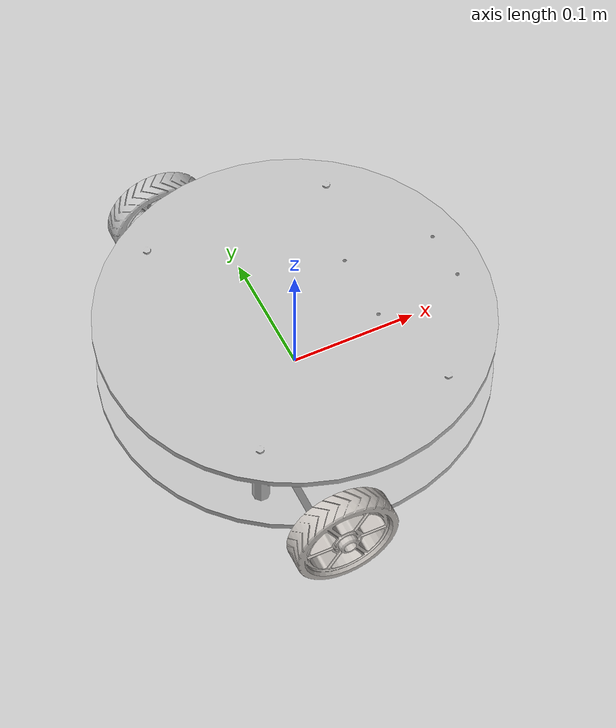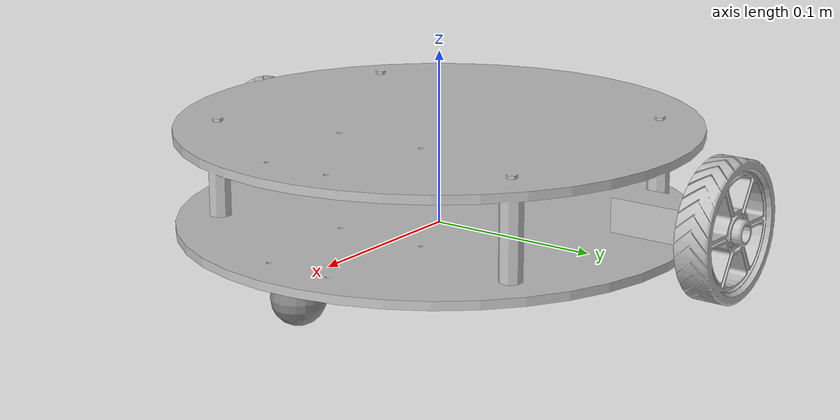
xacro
<?xml version="1.0"?>
<robot xmlns:xacro="http://www.ros.org/wiki/xacro" >
  <link name="base_footprint"/>
  <joint name="base_footprint_joint" type="fixed">
    <origin xyz="0 0 0" rpy="0 0 0"/>
    <parent link="base_footprint"/>
    <child link="base_link"/>
  </joint>

  <link
    name="base_link">
    <inertial>
      <origin
        xyz="0 0 0"
        rpy="0 0 0" />
      <mass
        value="0.9257" />
      <inertia
        ixx="0.0047878"
        ixy="6.3714E-12"
        ixz="1.7659E-21"
        iyy="0.009547"
        iyz="-7.7371E-24"
        izz="0.004776" />
    </inertial>
    <visual>
      <origin
        xyz="0 0 0"
        rpy="0 0 0" />
      <geometry>
        <mesh
          filename="file://$(find coorbot_description)/meshes/base_footprint.STL" />
      </geometry>
      <material
        name="">
        <color
          rgba="0.75294 0.75294 0.75294 1" />
      </material>
    </visual>
    <collision>
      <origin
        xyz="0 0 0"
        rpy="0 0 0" />
      <geometry>
        <mesh
          filename="file://$(find coorbot_description)/meshes/base_footprint.STL" />
      </geometry>
    </collision>
  </link>

  <gazebo reference="base_link">
      <material>Gazebo/White</material>
  </gazebo>

  <link
    name="fwheel">
    <xacro:inertial_sphere mass="0.05" radius="0.15">
        <origin xyz="0 0 0" rpy="0 0 0"/>
    </xacro:inertial_sphere>
    <visual>
      <origin
        xyz="0 0 -0.01"
        rpy="0 0 0" />
      <geometry>
        <sphere radius="0.015" />
      </geometry>
      <material
        name="">
        <color
          rgba="0.53725 0.53725 0.53725 1" />
      </material>
    </visual>
    <collision>
      <origin
        xyz="0 0 -0.01"
        rpy="0 0 0" />
      <geometry>
        <sphere radius="0.015" />
      </geometry>
    </collision>
  </link>

  <gazebo reference="fwheel">
    <material>Gazebo/Grey</material>
    <mu1 value="0.001"/>
    <mu2 value="0.001"/>
  </gazebo>
  <joint
    name="fwheel_joint"
    type="fixed">
    <origin
      xyz="0.125 0 0"
      rpy="0 0 0" />
    <parent
      link="base_link" />
    <child
      link="fwheel" />
  </joint>
  <link
    name="rwheel">
      <xacro:inertial_cylinder mass="0.1" length="0.02" radius="0.04">
          <origin xyz="0 0 0" rpy="0 0 0"/>
      </xacro:inertial_cylinder>
    <visual>
      <origin
        xyz="0 0 0"
        rpy="0 0 0" />
      <geometry>
        <mesh
          filename="file://$(find coorbot_description)/meshes/rwheel.STL" />
      </geometry>
      <material
        name="">
        <color
          rgba="0.77647 0.75686 0.73725 1" />
      </material>
    </visual>
    <collision>
      <origin
        xyz="0 0 0"
        rpy="0 0 0" />
      <geometry>
        <mesh
          filename="file://$(find coorbot_description)/meshes/rwheel.STL" />
      </geometry>
    </collision>
  </link>
  <gazebo reference="rwheel">
      <material>Gazebo/Grey</material>
  </gazebo>
  <joint
    name="rwheel_joint"
    type="continuous">
    <origin
      xyz="-0.04 -0.16196 0.015"
      rpy="-1.5708 3.1416 -3.1416" />
    <parent
      link="base_link" />
    <child
      link="rwheel" />
    <axis
      xyz="0 0 1" />
  </joint>
  <link
    name="lwheel">
      <xacro:inertial_cylinder mass="0.1" length="0.02" radius="0.04">
          <origin xyz="0 0 0" rpy="0 0 0"/>
      </xacro:inertial_cylinder>

    <visual>
      <origin
        xyz="0 0 0"
        rpy="0 0 0" />
      <geometry>
        <mesh
          filename="file://$(find coorbot_description)/meshes/lwheel.STL" />
      </geometry>
      <material
        name="">
        <color
          rgba="0.75294 0.75294 0.75294 1" />
      </material>
    </visual>
    <collision>
      <origin
        xyz="0 0 0"
        rpy="0 0 0" />
      <geometry>
        <mesh
          filename="file://$(find coorbot_description)/meshes/lwheel.STL" />
      </geometry>
    </collision>
  </link>
  <gazebo reference="lwheel">
      <material>Gazebo/Grey</material>
  </gazebo>
  <joint
    name="lwheel_joint"
    type="continuous">
    <origin
      xyz="-0.04 0.16196 0.015"
      rpy="1.5708 3.1416 3.1416" />
    <parent
      link="base_link" />
    <child
      link="lwheel" />
    <axis
      xyz="0 0 -1" />
  </joint>
</robot>
